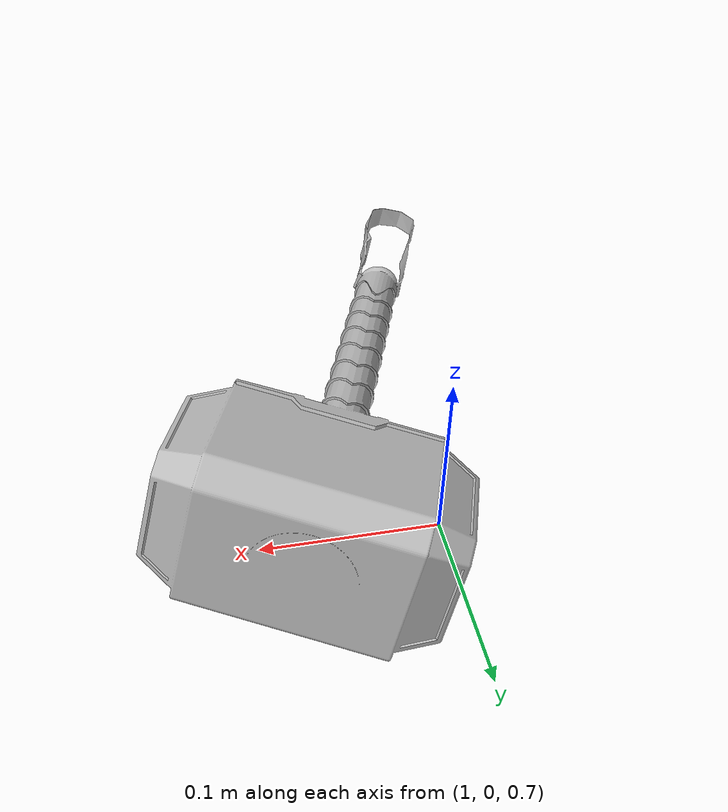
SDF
<?xml version="1.0" ?>
<sdf version="1.6">
  <world name="calibration_world">
    <!-- A global light source -->
    <include>
      <uri>model://sun</uri>
    </include>

    <!-- A ground plane -->
    <include>
      <uri>model://ground_plane</uri>
    </include>

  <include>
    <uri>model://thorHammer</uri>
    <name>thor_hammer_tensorflow</name>
    <pose> 1.06 0.002 0.78 -1.37 -0.19 -0.38</pose>
  </include>
      <include>
	<uri>model://directional_light</uri>
	<name>bidLight_0</name>
        <pose> 2.81 -0.55 3 0 0.77 0</pose>
    </include>

  </world>
</sdf>

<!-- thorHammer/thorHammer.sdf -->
<sdf version="1.6">
  <model name="thorHammer">
    <pose>0 0 0 0 0 0</pose>
    <static>true</static>
    <link name="link">
      <inertial>
        <mass>0.2</mass>
        <inertia> <!-- inertias are tricky to compute -->
          <!-- http://gazebosim.org/tutorials?tut=inertia&cat=build_robot -->
          <ixx>0.00083</ixx> 	<ixy>0.0</ixy> 		<ixz>0.0</ixz>
           			<iyy>0.00083</iyy>	<iyz>0.0</iyz>
          						<izz>0.00083</izz>
        </inertia>
      </inertial>
      <collision name="collision">
      	<geometry>
		<mesh>
        		<uri>model://thorHammer/meshes/thorHammer.dae</uri>
        	</mesh>
        </geometry>
		<surface>
			<friction>
				<ode>
					<mu>100000000000.0</mu>
					<mu2>100000000000.0</mu2>
					<fdir1>1.000000 1.000000 1.000000</fdir1>
		       			<slip1>0.000000</slip1>
		       			<slip2>0.000000</slip2>
				</ode>
			</friction>
			<contact>
		      		<ode>
		        		<soft_cfm>0.000000</soft_cfm>
		        		<soft_erp>0.500000</soft_erp>
		        		<kp>100000.000000</kp>
		        		<kd>10.000000</kd>
		        		<max_vel>100.000000</max_vel>
		        		<min_depth>0.0005000</min_depth>
		      		</ode>
			</contact>
	       	</surface>
	</collision>
      <visual name="visual">
        <geometry>
		<mesh>
        		<uri>model://thorHammer/meshes/thorHammer.dae</uri>
        	</mesh>
        </geometry>
      </visual>
    </link>
  </model>
</sdf>
